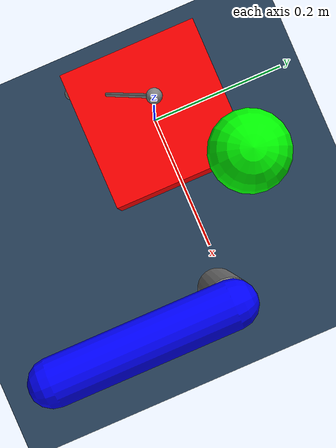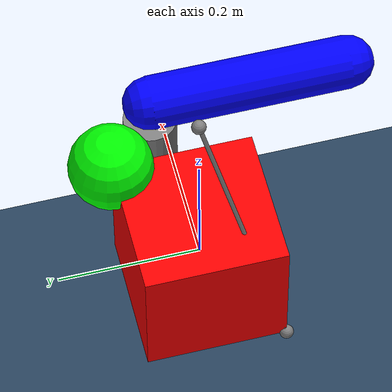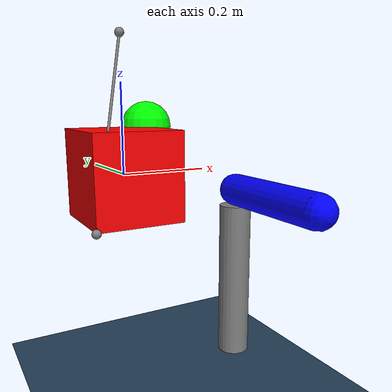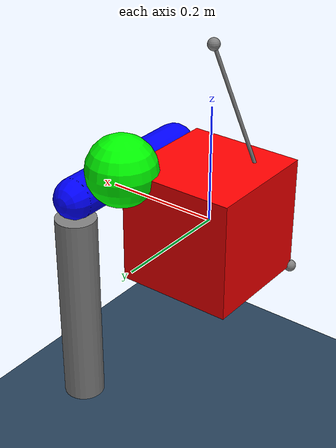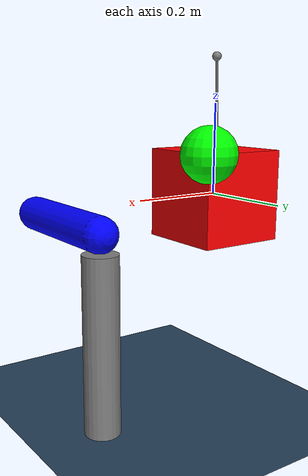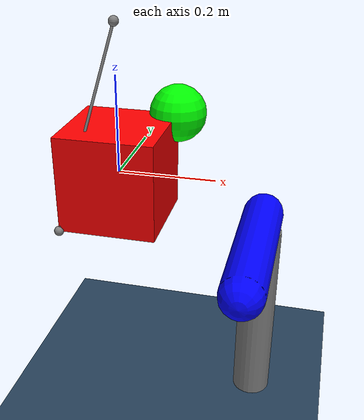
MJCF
<mujoco>

  <!-- assets of the properties of the ground -->
  <asset>
    <texture name="grid" type="2d" builtin="checker" rgb1=".1 .2 .3"
     rgb2=".2 .3 .4" width="300" height="300" mark="none"/>
    <material name="grid" texture="grid" texrepeat="1 1"
     texuniform="true" reflectance=".2"/>
  </asset>

  <worldbody>

    <!-- define light, ground, anchor for tendon, and fixed camera -->
    <light name="light" pos="0 0 1"/>
    <geom name="floor" type="plane" pos="0 0 -.5" size="2 2 .1" material="grid"/>
    <site name="anchor" pos="0 0 .3" size=".01"/>
    <camera name="fixed" pos="0 -1.3 .5" xyaxes="1 0 0 0 1 2"/>

    <!-- pole for the batting machine -->
    <geom name="pole" type="cylinder" fromto=".3 0 -.5 .3 0 -.1" size=".04"/>

    <!-- bat's body and joint (swing), where pos 0.3 connects it to the pole -->
    <body name="bat" pos=".3 0 -.1">
      <joint name="swing" type="hinge" damping="1" axis="0 0 1"/>
      <geom name="bat" type="capsule" fromto="0 0 .04 0 -.3 .04"
       size=".04" rgba="0 0 1 1"/>
    </body>

    <!-- body of the pinata with a (free) joint and IMU sensor location definition -->
    <body name="box_and_sphere" pos="0 0 0">
      <joint name="free" type="free"/>
      <geom name="red_box" type="box" size=".1 .1 .1" rgba="1 0 0 1"/>
      <geom name="green_sphere"  size=".06" pos=".1 .1 .1" rgba="0 1 0 1"/>
      <site name="hook" pos="-.1 -.1 -.1" size=".01"/>
      <site name="IMU"/>
    </body>

  </worldbody>

  <!-- tendon spanning the defined anchor and hook of the pinata -->
  <tendon>
    <spatial name="wire" limited="true" range="0 0.35" width="0.003">
      <site site="anchor"/>
      <site site="hook"/>
    </spatial>
  </tendon>

  <!-- actuator defined at the swing joint of the batting machine -->
  <actuator>
    <motor name="my_motor" joint="swing" gear="1"/>
  </actuator>

  <!-- accelerometer sensor defined at the IMU sensor location -->
  <sensor>
    <accelerometer name="accelerometer" site="IMU"/>
  </sensor>

</mujoco>
